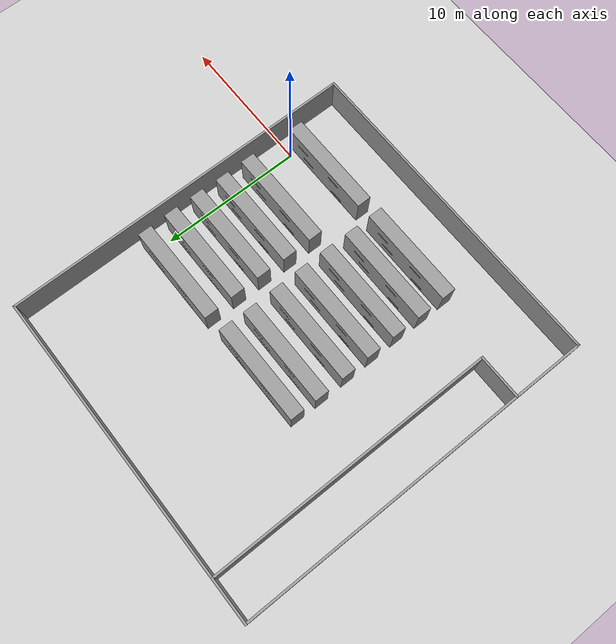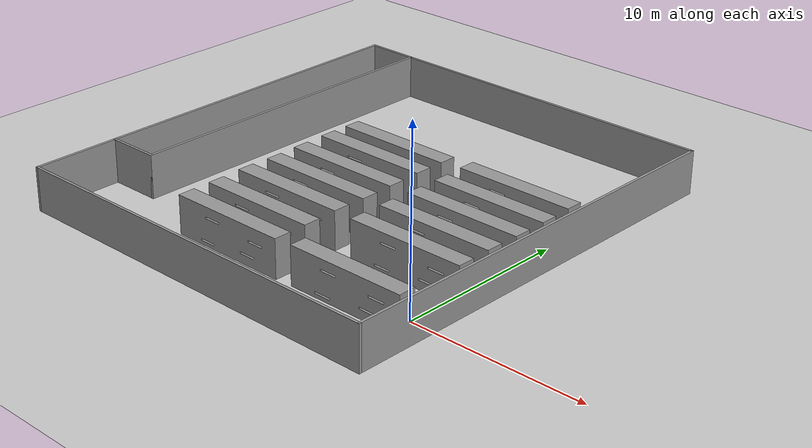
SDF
<sdf version="1.6">
 <world name="default">
  <light name="sun" type="directional">
   <pose>0 0 10 0 -0 0</pose>
   <diffuse>0.8 0.8 0.8 1</diffuse>
   <specular>0.2 0.2 0.2 1</specular>
   <attenuation>
    <range>1000</range>
    <constant>0.9</constant>
    <linear>0.01</linear>
    <quadratic>0.001</quadratic>
   </attenuation>
   <direction>-0.5 0.1 -0.9</direction>
  </light>
  <model name="ground_plane">
   <static>1</static>
   <link name="link">
    <collision name="collision">
     <geometry><plane><normal>0 0 1</normal><size>100 100</size></plane></geometry>
     <surface>
      <contact><collide_bitmask>65535</collide_bitmask></contact>
      <friction><ode><mu>100</mu><mu2>50</mu2></ode></friction>
     </surface>
    </collision>
    <visual name="visual">
     <cast_shadows>0</cast_shadows>
     <geometry><plane><normal>0 0 1</normal><size>100 100</size></plane></geometry>
     <material>
      <script><uri>file://media/materials/scripts/gazebo.material</uri><name>Gazebo/Grey</name></script>
     </material>
    </visual>
   </link>
  </model>
  <gravity>0 0 -9.8</gravity>
  <magnetic_field>6e-06 2.3e-05 -4.2e-05</magnetic_field>
  <atmosphere type="adiabatic"/>
  <physics name="default_physics" default="0" type="ode">
   <max_step_size>0.001</max_step_size>
   <real_time_factor>1</real_time_factor>
   <real_time_update_rate>1000</real_time_update_rate>
  </physics>
  <scene><ambient>0.4 0.4 0.4 1</ambient><background>0.7 0.7 0.7 1</background><shadows>1</shadows></scene>
  <audio><device>default</device></audio>
  <spherical_coordinates>
   <surface_model>EARTH_WGS84</surface_model>
   <latitude_deg>0</latitude_deg>
   <longitude_deg>0</longitude_deg>
   <elevation>0</elevation>
   <heading_deg>0</heading_deg>
  </spherical_coordinates>
  <model name="library_2">
   <link name="link_0">
    <inertial>
     <mass>1</mass>
     <inertia>
      <ixx>0.166667</ixx>
      <ixy>0</ixy>
      <ixz>0</ixz>
      <iyy>0.166667</iyy>
      <iyz>0</iyz>
      <izz>0.166667</izz>
     </inertia>
    </inertial>
    <pose>-3.69006 -6.33327 -0.003806 1.5686 -0 0</pose>
    <visual name="visual">
     <geometry>
      <mesh>
       <uri>/home/larryyan/catkin_ws/src/indoor_robot/models/library/models/book-shelf.obj</uri>
       <scale>1 1 1</scale>
      </mesh>
     </geometry>
     <material>
      <lighting>1</lighting>
      <script><uri>file://media/materials/scripts/gazebo.material</uri><name>Gazebo/Grey</name></script>
      <ambient>0 0 0 0</ambient>
      <diffuse>0 0 0 0</diffuse>
      <specular>0 0 0 0</specular>
      <emissive>0 0 0 0</emissive>
      <shader type="vertex"><normal_map>__default__</normal_map></shader>
     </material>
    </visual>
    <collision name="collision">
     <geometry>
      <mesh>
       <uri>/home/larryyan/catkin_ws/src/indoor_robot/models/library/models/book-shelf.obj</uri>
       <scale>1 1 1</scale>
      </mesh>
     </geometry>
     <surface>
      <friction>
       <ode><mu>1</mu><mu2>1</mu2><fdir1>0 0 0</fdir1><slip1>0</slip1><slip2>0</slip2></ode>
       <torsional>
        <coefficient>1</coefficient>
        <patch_radius>0</patch_radius>
        <surface_radius>0</surface_radius>
        <use_patch_radius>1</use_patch_radius>
        <ode><slip>0</slip></ode>
       </torsional>
      </friction>
      <bounce><restitution_coefficient>0</restitution_coefficient><threshold>1e+06</threshold></bounce>
      <contact>
       <collide_without_contact>0</collide_without_contact>
       <collide_without_contact_bitmask>1</collide_without_contact_bitmask>
       <collide_bitmask>1</collide_bitmask>
       <ode>
        <soft_cfm>0</soft_cfm>
        <soft_erp>0.2</soft_erp>
        <kp>1e+13</kp>
        <kd>1</kd>
        <max_vel>0.01</max_vel>
        <min_depth>0</min_depth>
       </ode>
       <bullet>
        <split_impulse>1</split_impulse>
        <split_impulse_penetration_threshold>-0.01</split_impulse_penetration_threshold>
        <soft_cfm>0</soft_cfm>
        <soft_erp>0.2</soft_erp>
        <kp>1e+13</kp>
        <kd>1</kd>
       </bullet>
      </contact>
     </surface>
    </collision>
   </link>
   <link name="link_0_clone">
    <inertial>
     <mass>1</mass>
     <inertia>
      <ixx>0.166667</ixx>
      <ixy>0</ixy>
      <ixz>0</ixz>
      <iyy>0.166667</iyy>
      <iyz>0</iyz>
      <izz>0.166667</izz>
     </inertia>
    </inertial>
    <pose>-3.71001 -4.35599 -0.003806 1.5686 -0 0</pose>
    <visual name="visual">
     <geometry>
      <mesh>
       <uri>/home/larryyan/catkin_ws/src/indoor_robot/models/library/models/book-shelf.obj</uri>
       <scale>1 1 1</scale>
      </mesh>
     </geometry>
     <material>
      <lighting>1</lighting>
      <script><uri>file://media/materials/scripts/gazebo.material</uri><name>Gazebo/Grey</name></script>
      <ambient>0 0 0 0</ambient>
      <diffuse>0 0 0 0</diffuse>
      <specular>0 0 0 0</specular>
      <emissive>0 0 0 0</emissive>
      <shader type="vertex"><normal_map>__default__</normal_map></shader>
     </material>
    </visual>
    <collision name="collision">
     <geometry>
      <mesh>
       <uri>/home/larryyan/catkin_ws/src/indoor_robot/models/library/models/book-shelf.obj</uri>
       <scale>1 1 1</scale>
      </mesh>
     </geometry>
     <surface>
      <friction>
       <ode><mu>1</mu><mu2>1</mu2><fdir1>0 0 0</fdir1><slip1>0</slip1><slip2>0</slip2></ode>
       <torsional>
        <coefficient>1</coefficient>
        <patch_radius>0</patch_radius>
        <surface_radius>0</surface_radius>
        <use_patch_radius>1</use_patch_radius>
        <ode><slip>0</slip></ode>
       </torsional>
      </friction>
      <bounce><restitution_coefficient>0</restitution_coefficient><threshold>1e+06</threshold></bounce>
      <contact>
       <collide_without_contact>0</collide_without_contact>
       <collide_without_contact_bitmask>1</collide_without_contact_bitmask>
       <collide_bitmask>1</collide_bitmask>
       <ode>
        <soft_cfm>0</soft_cfm>
        <soft_erp>0.2</soft_erp>
        <kp>1e+13</kp>
        <kd>1</kd>
        <max_vel>0.01</max_vel>
        <min_depth>0</min_depth>
       </ode>
       <bullet>
        <split_impulse>1</split_impulse>
        <split_impulse_penetration_threshold>-0.01</split_impulse_penetration_threshold>
        <soft_cfm>0</soft_cfm>
        <soft_erp>0.2</soft_erp>
        <kp>1e+13</kp>
        <kd>1</kd>
       </bullet>
      </contact>
     </surface>
    </collision>
   </link>
   <link name="link_0_clone_0">
    <inertial>
     <mass>1</mass>
     <inertia>
      <ixx>0.166667</ixx>
      <ixy>0</ixy>
      <ixz>0</ixz>
      <iyy>0.166667</iyy>
      <iyz>0</iyz>
      <izz>0.166667</izz>
     </inertia>
    </inertial>
    <pose>-3.69927 -2.33467 0.045672 1.5686 -0 0</pose>
    <visual name="visual">
     <geometry>
      <mesh>
       <uri>/home/larryyan/catkin_ws/src/indoor_robot/models/library/models/book-shelf.obj</uri>
       <scale>1 1 1</scale>
      </mesh>
     </geometry>
     <material>
      <lighting>1</lighting>
      <script><uri>file://media/materials/scripts/gazebo.material</uri><name>Gazebo/Grey</name></script>
      <ambient>0 0 0 0</ambient>
      <diffuse>0 0 0 0</diffuse>
      <specular>0 0 0 0</specular>
      <emissive>0 0 0 0</emissive>
      <shader type="vertex"><normal_map>__default__</normal_map></shader>
     </material>
    </visual>
    <collision name="collision">
     <geometry>
      <mesh>
       <uri>/home/larryyan/catkin_ws/src/indoor_robot/models/library/models/book-shelf.obj</uri>
       <scale>1 1 1</scale>
      </mesh>
     </geometry>
     <surface>
      <friction>
       <ode><mu>1</mu><mu2>1</mu2><fdir1>0 0 0</fdir1><slip1>0</slip1><slip2>0</slip2></ode>
       <torsional>
        <coefficient>1</coefficient>
        <patch_radius>0</patch_radius>
        <surface_radius>0</surface_radius>
        <use_patch_radius>1</use_patch_radius>
        <ode><slip>0</slip></ode>
       </torsional>
      </friction>
      <bounce><restitution_coefficient>0</restitution_coefficient><threshold>1e+06</threshold></bounce>
      <contact>
       <collide_without_contact>0</collide_without_contact>
       <collide_without_contact_bitmask>1</collide_without_contact_bitmask>
       <collide_bitmask>1</collide_bitmask>
       <ode>
        <soft_cfm>0</soft_cfm>
        <soft_erp>0.2</soft_erp>
        <kp>1e+13</kp>
        <kd>1</kd>
        <max_vel>0.01</max_vel>
        <min_depth>0</min_depth>
       </ode>
       <bullet>
        <split_impulse>1</split_impulse>
        <split_impulse_penetration_threshold>-0.01</split_impulse_penetration_threshold>
        <soft_cfm>0</soft_cfm>
        <soft_erp>0.2</soft_erp>
        <kp>1e+13</kp>
        <kd>1</kd>
       </bullet>
      </contact>
     </surface>
    </collision>
   </link>
   <link name="link_0_clone_1">
    <inertial>
     <mass>1</mass>
     <inertia>
      <ixx>0.166667</ixx>
      <ixy>0</ixy>
      <ixz>0</ixz>
      <iyy>0.166667</iyy>
      <iyz>0</iyz>
      <izz>0.166667</izz>
     </inertia>
    </inertial>
    <pose>-3.71256 -0.32633 -0.003806 1.5686 -0 0</pose>
    <visual name="visual">
     <geometry>
      <mesh>
       <uri>/home/larryyan/catkin_ws/src/indoor_robot/models/library/models/book-shelf.obj</uri>
       <scale>1 1 1</scale>
      </mesh>
     </geometry>
     <material>
      <lighting>1</lighting>
      <script><uri>file://media/materials/scripts/gazebo.material</uri><name>Gazebo/Grey</name></script>
      <ambient>0 0 0 0</ambient>
      <diffuse>0 0 0 0</diffuse>
      <specular>0 0 0 0</specular>
      <emissive>0 0 0 0</emissive>
      <shader type="vertex"><normal_map>__default__</normal_map></shader>
     </material>
    </visual>
    <collision name="collision">
     <geometry>
      <mesh>
       <uri>/home/larryyan/catkin_ws/src/indoor_robot/models/library/models/book-shelf.obj</uri>
       <scale>1 1 1</scale>
      </mesh>
     </geometry>
     <surface>
      <friction>
       <ode><mu>1</mu><mu2>1</mu2><fdir1>0 0 0</fdir1><slip1>0</slip1><slip2>0</slip2></ode>
       <torsional>
        <coefficient>1</coefficient>
        <patch_radius>0</patch_radius>
        <surface_radius>0</surface_radius>
        <use_patch_radius>1</use_patch_radius>
        <ode><slip>0</slip></ode>
       </torsional>
      </friction>
      <bounce><restitution_coefficient>0</restitution_coefficient><threshold>1e+06</threshold></bounce>
      <contact>
       <collide_without_contact>0</collide_without_contact>
       <collide_without_contact_bitmask>1</collide_without_contact_bitmask>
       <collide_bitmask>1</collide_bitmask>
       <ode>
        <soft_cfm>0</soft_cfm>
        <soft_erp>0.2</soft_erp>
        <kp>1e+13</kp>
        <kd>1</kd>
        <max_vel>0.01</max_vel>
        <min_depth>0</min_depth>
       </ode>
       <bullet>
        <split_impulse>1</split_impulse>
        <split_impulse_penetration_threshold>-0.01</split_impulse_penetration_threshold>
        <soft_cfm>0</soft_cfm>
        <soft_erp>0.2</soft_erp>
        <kp>1e+13</kp>
        <kd>1</kd>
       </bullet>
      </contact>
     </surface>
    </collision>
   </link>
   <link name="link_0_clone_11">
    <inertial>
     <mass>1</mass>
     <inertia>
      <ixx>0.166667</ixx>
      <ixy>0</ixy>
      <ixz>0</ixz>
      <iyy>0.166667</iyy>
      <iyz>0</iyz>
      <izz>0.166667</izz>
     </inertia>
    </inertial>
    <pose>4.27862 -6.25594 -0.003806 1.5686 -0 0</pose>
    <visual name="visual">
     <geometry>
      <mesh>
       <uri>/home/larryyan/catkin_ws/src/indoor_robot/models/library/models/book-shelf.obj</uri>
       <scale>1 1 1</scale>
      </mesh>
     </geometry>
     <material>
      <lighting>1</lighting>
      <script><uri>file://media/materials/scripts/gazebo.material</uri><name>Gazebo/Grey</name></script>
      <ambient>0 0 0 0</ambient>
      <diffuse>0 0 0 0</diffuse>
      <specular>0 0 0 0</specular>
      <emissive>0 0 0 0</emissive>
      <shader type="vertex"><normal_map>__default__</normal_map></shader>
     </material>
    </visual>
    <collision name="collision">
     <geometry>
      <mesh>
       <uri>/home/larryyan/catkin_ws/src/indoor_robot/models/library/models/book-shelf.obj</uri>
       <scale>1 1 1</scale>
      </mesh>
     </geometry>
     <surface>
      <friction>
       <ode><mu>1</mu><mu2>1</mu2><fdir1>0 0 0</fdir1><slip1>0</slip1><slip2>0</slip2></ode>
       <torsional>
        <coefficient>1</coefficient>
        <patch_radius>0</patch_radius>
        <surface_radius>0</surface_radius>
        <use_patch_radius>1</use_patch_radius>
        <ode><slip>0</slip></ode>
       </torsional>
      </friction>
      <bounce><restitution_coefficient>0</restitution_coefficient><threshold>1e+06</threshold></bounce>
      <contact>
       <collide_without_contact>0</collide_without_contact>
       <collide_without_contact_bitmask>1</collide_without_contact_bitmask>
       <collide_bitmask>1</collide_bitmask>
       <ode>
        <soft_cfm>0</soft_cfm>
        <soft_erp>0.2</soft_erp>
        <kp>1e+13</kp>
        <kd>1</kd>
        <max_vel>0.01</max_vel>
        <min_depth>0</min_depth>
       </ode>
       <bullet>
        <split_impulse>1</split_impulse>
        <split_impulse_penetration_threshold>-0.01</split_impulse_penetration_threshold>
        <soft_cfm>0</soft_cfm>
        <soft_erp>0.2</soft_erp>
        <kp>1e+13</kp>
        <kd>1</kd>
       </bullet>
      </contact>
     </surface>
    </collision>
   </link>
   <link name="link_0_clone_2">
    <inertial>
     <mass>1</mass>
     <inertia>
      <ixx>0.166667</ixx>
      <ixy>0</ixy>
      <ixz>0</ixz>
      <iyy>0.166667</iyy>
      <iyz>0</iyz>
      <izz>0.166667</izz>
     </inertia>
    </inertial>
    <pose>-3.75559 1.66628 -0.003806 1.5686 -0 0</pose>
    <visual name="visual">
     <geometry>
      <mesh>
       <uri>/home/larryyan/catkin_ws/src/indoor_robot/models/library/models/book-shelf.obj</uri>
       <scale>1 1 1</scale>
      </mesh>
     </geometry>
     <material>
      <lighting>1</lighting>
      <script><uri>file://media/materials/scripts/gazebo.material</uri><name>Gazebo/Grey</name></script>
      <ambient>0 0 0 0</ambient>
      <diffuse>0 0 0 0</diffuse>
      <specular>0 0 0 0</specular>
      <emissive>0 0 0 0</emissive>
      <shader type="vertex"><normal_map>__default__</normal_map></shader>
     </material>
    </visual>
    <collision name="collision">
     <geometry>
      <mesh>
       <uri>/home/larryyan/catkin_ws/src/indoor_robot/models/library/models/book-shelf.obj</uri>
       <scale>1 1 1</scale>
      </mesh>
     </geometry>
     <surface>
      <friction>
       <ode><mu>1</mu><mu2>1</mu2><fdir1>0 0 0</fdir1><slip1>0</slip1><slip2>0</slip2></ode>
       <torsional>
        <coefficient>1</coefficient>
        <patch_radius>0</patch_radius>
        <surface_radius>0</surface_radius>
        <use_patch_radius>1</use_patch_radius>
        <ode><slip>0</slip></ode>
       </torsional>
      </friction>
      <bounce><restitution_coefficient>0</restitution_coefficient><threshold>1e+06</threshold></bounce>
      <contact>
       <collide_without_contact>0</collide_without_contact>
       <collide_without_contact_bitmask>1</collide_without_contact_bitmask>
       <collide_bitmask>1</collide_bitmask>
       <ode>
        <soft_cfm>0</soft_cfm>
        <soft_erp>0.2</soft_erp>
        <kp>1e+13</kp>
        <kd>1</kd>
        <max_vel>0.01</max_vel>
        <min_depth>0</min_depth>
       </ode>
       <bullet>
        <split_impulse>1</split_impulse>
        <split_impulse_penetration_threshold>-0.01</split_impulse_penetration_threshold>
        <soft_cfm>0</soft_cfm>
        <soft_erp>0.2</soft_erp>
        <kp>1e+13</kp>
        <kd>1</kd>
       </bullet>
      </contact>
     </surface>
    </collision>
   </link>
   <link name="link_0_clone_3">
    <inertial>
     <mass>1</mass>
     <inertia>
      <ixx>0.166667</ixx>
      <ixy>0</ixy>
      <ixz>0</ixz>
      <iyy>0.166667</iyy>
      <iyz>0</iyz>
      <izz>0.166667</izz>
     </inertia>
    </inertial>
    <pose>-3.79987 3.74751 -0.003806 1.5686 -0 0</pose>
    <visual name="visual">
     <geometry>
      <mesh>
       <uri>/home/larryyan/catkin_ws/src/indoor_robot/models/library/models/book-shelf.obj</uri>
       <scale>1 1 1</scale>
      </mesh>
     </geometry>
     <material>
      <lighting>1</lighting>
      <script><uri>file://media/materials/scripts/gazebo.material</uri><name>Gazebo/Grey</name></script>
      <ambient>0 0 0 0</ambient>
      <diffuse>0 0 0 0</diffuse>
      <specular>0 0 0 0</specular>
      <emissive>0 0 0 0</emissive>
      <shader type="vertex"><normal_map>__default__</normal_map></shader>
     </material>
    </visual>
    <collision name="collision">
     <geometry>
      <mesh>
       <uri>/home/larryyan/catkin_ws/src/indoor_robot/models/library/models/book-shelf.obj</uri>
       <scale>1 1 1</scale>
      </mesh>
     </geometry>
     <surface>
      <friction>
       <ode><mu>1</mu><mu2>1</mu2><fdir1>0 0 0</fdir1><slip1>0</slip1><slip2>0</slip2></ode>
       <torsional>
        <coefficient>1</coefficient>
        <patch_radius>0</patch_radius>
        <surface_radius>0</surface_radius>
        <use_patch_radius>1</use_patch_radius>
        <ode><slip>0</slip></ode>
       </torsional>
      </friction>
      <bounce><restitution_coefficient>0</restitution_coefficient><threshold>1e+06</threshold></bounce>
      <contact>
       <collide_without_contact>0</collide_without_contact>
       <collide_without_contact_bitmask>1</collide_without_contact_bitmask>
       <collide_bitmask>1</collide_bitmask>
       <ode>
        <soft_cfm>0</soft_cfm>
        <soft_erp>0.2</soft_erp>
        <kp>1e+13</kp>
        <kd>1</kd>
        <max_vel>0.01</max_vel>
        <min_depth>0</min_depth>
       </ode>
       <bullet>
        <split_impulse>1</split_impulse>
        <split_impulse_penetration_threshold>-0.01</split_impulse_penetration_threshold>
        <soft_cfm>0</soft_cfm>
        <soft_erp>0.2</soft_erp>
        <kp>1e+13</kp>
        <kd>1</kd>
       </bullet>
      </contact>
     </surface>
    </collision>
   </link>
   <link name="link_0_clone_4">
    <inertial>
     <mass>1</mass>
     <inertia>
      <ixx>0.166667</ixx>
      <ixy>0</ixy>
      <ixz>0</ixz>
      <iyy>0.166667</iyy>
      <iyz>0</iyz>
      <izz>0.166667</izz>
     </inertia>
    </inertial>
    <pose>-3.77388 5.5794 -0.003806 1.5686 -0 0</pose>
    <visual name="visual">
     <geometry>
      <mesh>
       <uri>/home/larryyan/catkin_ws/src/indoor_robot/models/library/models/book-shelf.obj</uri>
       <scale>1 1 1</scale>
      </mesh>
     </geometry>
     <material>
      <lighting>1</lighting>
      <script><uri>file://media/materials/scripts/gazebo.material</uri><name>Gazebo/Grey</name></script>
      <ambient>0 0 0 0</ambient>
      <diffuse>0 0 0 0</diffuse>
      <specular>0 0 0 0</specular>
      <emissive>0 0 0 0</emissive>
      <shader type="vertex"><normal_map>__default__</normal_map></shader>
     </material>
    </visual>
    <collision name="collision">
     <geometry>
      <mesh>
       <uri>/home/larryyan/catkin_ws/src/indoor_robot/models/library/models/book-shelf.obj</uri>
       <scale>1 1 1</scale>
      </mesh>
     </geometry>
     <surface>
      <friction>
       <ode><mu>1</mu><mu2>1</mu2><fdir1>0 0 0</fdir1><slip1>0</slip1><slip2>0</slip2></ode>
       <torsional>
        <coefficient>1</coefficient>
        <patch_radius>0</patch_radius>
        <surface_radius>0</surface_radius>
        <use_patch_radius>1</use_patch_radius>
        <ode><slip>0</slip></ode>
       </torsional>
      </friction>
      <bounce><restitution_coefficient>0</restitution_coefficient><threshold>1e+06</threshold></bounce>
      <contact>
       <collide_without_contact>0</collide_without_contact>
       <collide_without_contact_bitmask>1</collide_without_contact_bitmask>
       <collide_bitmask>1</collide_bitmask>
       <ode>
        <soft_cfm>0</soft_cfm>
        <soft_erp>0.2</soft_erp>
        <kp>1e+13</kp>
        <kd>1</kd>
        <max_vel>0.01</max_vel>
        <min_depth>0</min_depth>
       </ode>
       <bullet>
        <split_impulse>1</split_impulse>
        <split_impulse_penetration_threshold>-0.01</split_impulse_penetration_threshold>
        <soft_cfm>0</soft_cfm>
        <soft_erp>0.2</soft_erp>
        <kp>1e+13</kp>
        <kd>1</kd>
       </bullet>
      </contact>
     </surface>
    </collision>
   </link>
   <link name="link_0_clone_5">
    <inertial>
     <mass>1</mass>
     <inertia>
      <ixx>0.166667</ixx>
      <ixy>0</ixy>
      <ixz>0</ixz>
      <iyy>0.166667</iyy>
      <iyz>0</iyz>
      <izz>0.166667</izz>
     </inertia>
    </inertial>
    <pose>4.34047 5.78579 -0.003806 1.5686 -0 0</pose>
    <visual name="visual">
     <geometry>
      <mesh>
       <uri>/home/larryyan/catkin_ws/src/indoor_robot/models/library/models/book-shelf.obj</uri>
       <scale>1 1 1</scale>
      </mesh>
     </geometry>
     <material>
      <lighting>1</lighting>
      <script><uri>file://media/materials/scripts/gazebo.material</uri><name>Gazebo/Grey</name></script>
      <ambient>0 0 0 0</ambient>
      <diffuse>0 0 0 0</diffuse>
      <specular>0 0 0 0</specular>
      <emissive>0 0 0 0</emissive>
      <shader type="vertex"><normal_map>__default__</normal_map></shader>
     </material>
    </visual>
    <collision name="collision">
     <geometry>
      <mesh>
       <uri>/home/larryyan/catkin_ws/src/indoor_robot/models/library/models/book-shelf.obj</uri>
       <scale>1 1 1</scale>
      </mesh>
     </geometry>
     <surface>
      <friction>
       <ode><mu>1</mu><mu2>1</mu2><fdir1>0 0 0</fdir1><slip1>0</slip1><slip2>0</slip2></ode>
       <torsional>
        <coefficient>1</coefficient>
        <patch_radius>0</patch_radius>
        <surface_radius>0</surface_radius>
        <use_patch_radius>1</use_patch_radius>
        <ode><slip>0</slip></ode>
       </torsional>
      </friction>
      <bounce><restitution_coefficient>0</restitution_coefficient><threshold>1e+06</threshold></bounce>
      <contact>
       <collide_without_contact>0</collide_without_contact>
       <collide_without_contact_bitmask>1</collide_without_contact_bitmask>
       <collide_bitmask>1</collide_bitmask>
       <ode>
        <soft_cfm>0</soft_cfm>
        <soft_erp>0.2</soft_erp>
        <kp>1e+13</kp>
        <kd>1</kd>
        <max_vel>0.01</max_vel>
        <min_depth>0</min_depth>
       </ode>
       <bullet>
        <split_impulse>1</split_impulse>
        <split_impulse_penetration_threshold>-0.01</split_impulse_penetration_threshold>
        <soft_cfm>0</soft_cfm>
        <soft_erp>0.2</soft_erp>
        <kp>1e+13</kp>
        <kd>1</kd>
       </bullet>
      </contact>
     </surface>
    </collision>
   </link>
   <link name="link_0_clone_6">
    <inertial>
     <mass>1</mass>
     <inertia>
      <ixx>0.166667</ixx>
      <ixy>0</ixy>
      <ixz>0</ixz>
      <iyy>0.166667</iyy>
      <iyz>0</iyz>
      <izz>0.166667</izz>
     </inertia>
    </inertial>
    <pose>4.39332 3.74325 -0.003806 1.5686 -0 0</pose>
    <visual name="visual">
     <geometry>
      <mesh>
       <uri>/home/larryyan/catkin_ws/src/indoor_robot/models/library/models/book-shelf.obj</uri>
       <scale>1 1 1</scale>
      </mesh>
     </geometry>
     <material>
      <lighting>1</lighting>
      <script><uri>file://media/materials/scripts/gazebo.material</uri><name>Gazebo/Grey</name></script>
      <ambient>0 0 0 0</ambient>
      <diffuse>0 0 0 0</diffuse>
      <specular>0 0 0 0</specular>
      <emissive>0 0 0 0</emissive>
      <shader type="vertex"><normal_map>__default__</normal_map></shader>
     </material>
    </visual>
    <collision name="collision">
     <geometry>
      <mesh>
       <uri>/home/larryyan/catkin_ws/src/indoor_robot/models/library/models/book-shelf.obj</uri>
       <scale>1 1 1</scale>
      </mesh>
     </geometry>
     <surface>
      <friction>
       <ode><mu>1</mu><mu2>1</mu2><fdir1>0 0 0</fdir1><slip1>0</slip1><slip2>0</slip2></ode>
       <torsional>
        <coefficient>1</coefficient>
        <patch_radius>0</patch_radius>
        <surface_radius>0</surface_radius>
        <use_patch_radius>1</use_patch_radius>
        <ode><slip>0</slip></ode>
       </torsional>
      </friction>
      <bounce><restitution_coefficient>0</restitution_coefficient><threshold>1e+06</threshold></bounce>
      <contact>
       <collide_without_contact>0</collide_without_contact>
       <collide_without_contact_bitmask>1</collide_without_contact_bitmask>
       <collide_bitmask>1</collide_bitmask>
       <ode>
        <soft_cfm>0</soft_cfm>
        <soft_erp>0.2</soft_erp>
        <kp>1e+13</kp>
        <kd>1</kd>
        <max_vel>0.01</max_vel>
        <min_depth>0</min_depth>
       </ode>
       <bullet>
        <split_impulse>1</split_impulse>
        <split_impulse_penetration_threshold>-0.01</split_impulse_penetration_threshold>
        <soft_cfm>0</soft_cfm>
        <soft_erp>0.2</soft_erp>
        <kp>1e+13</kp>
        <kd>1</kd>
       </bullet>
      </contact>
     </surface>
    </collision>
   </link>
   <link name="link_0_clone_7">
    <inertial>
     <mass>1</mass>
     <inertia>
      <ixx>0.166667</ixx>
      <ixy>0</ixy>
      <ixz>0</ixz>
      <iyy>0.166667</iyy>
      <iyz>0</iyz>
      <izz>0.166667</izz>
     </inertia>
    </inertial>
    <pose>4.39733 1.72192 -0.003806 1.5686 -0 0</pose>
    <visual name="visual">
     <geometry>
      <mesh>
       <uri>/home/larryyan/catkin_ws/src/indoor_robot/models/library/models/book-shelf.obj</uri>
       <scale>1 1 1</scale>
      </mesh>
     </geometry>
     <material>
      <lighting>1</lighting>
      <script><uri>file://media/materials/scripts/gazebo.material</uri><name>Gazebo/Grey</name></script>
      <ambient>0 0 0 0</ambient>
      <diffuse>0 0 0 0</diffuse>
      <specular>0 0 0 0</specular>
      <emissive>0 0 0 0</emissive>
      <shader type="vertex"><normal_map>__default__</normal_map></shader>
     </material>
    </visual>
    <collision name="collision">
     <geometry>
      <mesh>
       <uri>/home/larryyan/catkin_ws/src/indoor_robot/models/library/models/book-shelf.obj</uri>
       <scale>1 1 1</scale>
      </mesh>
     </geometry>
     <surface>
      <friction>
       <ode><mu>1</mu><mu2>1</mu2><fdir1>0 0 0</fdir1><slip1>0</slip1><slip2>0</slip2></ode>
       <torsional>
        <coefficient>1</coefficient>
        <patch_radius>0</patch_radius>
        <surface_radius>0</surface_radius>
        <use_patch_radius>1</use_patch_radius>
        <ode><slip>0</slip></ode>
       </torsional>
      </friction>
      <bounce><restitution_coefficient>0</restitution_coefficient><threshold>1e+06</threshold></bounce>
      <contact>
       <collide_without_contact>0</collide_without_contact>
       <collide_without_contact_bitmask>1</collide_without_contact_bitmask>
       <collide_bitmask>1</collide_bitmask>
       <ode>
        <soft_cfm>0</soft_cfm>
        <soft_erp>0.2</soft_erp>
        <kp>1e+13</kp>
        <kd>1</kd>
        <max_vel>0.01</max_vel>
        <min_depth>0</min_depth>
       </ode>
       <bullet>
        <split_impulse>1</split_impulse>
        <split_impulse_penetration_threshold>-0.01</split_impulse_penetration_threshold>
        <soft_cfm>0</soft_cfm>
        <soft_erp>0.2</soft_erp>
        <kp>1e+13</kp>
        <kd>1</kd>
       </bullet>
      </contact>
     </surface>
    </collision>
   </link>
   <link name="link_0_clone_8">
    <inertial>
     <mass>1</mass>
     <inertia>
      <ixx>0.166667</ixx>
      <ixy>0</ixy>
      <ixz>0</ixz>
      <iyy>0.166667</iyy>
      <iyz>0</iyz>
      <izz>0.166667</izz>
     </inertia>
    </inertial>
    <pose>4.34963 -0.285763 -0.003806 1.5686 -0 0</pose>
    <visual name="visual">
     <geometry>
      <mesh>
       <uri>/home/larryyan/catkin_ws/src/indoor_robot/models/library/models/book-shelf.obj</uri>
       <scale>1 1 1</scale>
      </mesh>
     </geometry>
     <material>
      <lighting>1</lighting>
      <script><uri>file://media/materials/scripts/gazebo.material</uri><name>Gazebo/Grey</name></script>
      <ambient>0 0 0 0</ambient>
      <diffuse>0 0 0 0</diffuse>
      <specular>0 0 0 0</specular>
      <emissive>0 0 0 0</emissive>
      <shader type="vertex"><normal_map>__default__</normal_map></shader>
     </material>
    </visual>
    <collision name="collision">
     <geometry>
      <mesh>
       <uri>/home/larryyan/catkin_ws/src/indoor_robot/models/library/models/book-shelf.obj</uri>
       <scale>1 1 1</scale>
      </mesh>
     </geometry>
     <surface>
      <friction>
       <ode><mu>1</mu><mu2>1</mu2><fdir1>0 0 0</fdir1><slip1>0</slip1><slip2>0</slip2></ode>
       <torsional>
        <coefficient>1</coefficient>
        <patch_radius>0</patch_radius>
        <surface_radius>0</surface_radius>
        <use_patch_radius>1</use_patch_radius>
        <ode><slip>0</slip></ode>
       </torsional>
      </friction>
      <bounce><restitution_coefficient>0</restitution_coefficient><threshold>1e+06</threshold></bounce>
      <contact>
       <collide_without_contact>0</collide_without_contact>
       <collide_without_contact_bitmask>1</collide_without_contact_bitmask>
       <collide_bitmask>1</collide_bitmask>
       <ode>
        <soft_cfm>0</soft_cfm>
        <soft_erp>0.2</soft_erp>
        <kp>1e+13</kp>
        <kd>1</kd>
        <max_vel>0.01</max_vel>
        <min_depth>0</min_depth>
       </ode>
       <bullet>
        <split_impulse>1</split_impulse>
        <split_impulse_penetration_threshold>-0.01</split_impulse_penetration_threshold>
        <soft_cfm>0</soft_cfm>
        <soft_erp>0.2</soft_erp>
        <kp>1e+13</kp>
        <kd>1</kd>
       </bullet>
      </contact>
     </surface>
    </collision>
   </link>
   <link name="link_0_clone_9">
    <inertial>
     <mass>1</mass>
     <inertia>
      <ixx>0.166667</ixx>
      <ixy>0</ixy>
      <ixz>0</ixz>
      <iyy>0.166667</iyy>
      <iyz>0</iyz>
      <izz>0.166667</izz>
     </inertia>
    </inertial>
    <pose>4.38185 -2.35219 -0.003806 1.5686 -0 0</pose>
    <visual name="visual">
     <geometry>
      <mesh>
       <uri>/home/larryyan/catkin_ws/src/indoor_robot/models/library/models/book-shelf.obj</uri>
       <scale>1 1 1</scale>
      </mesh>
     </geometry>
     <material>
      <lighting>1</lighting>
      <script><uri>file://media/materials/scripts/gazebo.material</uri><name>Gazebo/Grey</name></script>
      <ambient>0 0 0 0</ambient>
      <diffuse>0 0 0 0</diffuse>
      <specular>0 0 0 0</specular>
      <emissive>0 0 0 0</emissive>
      <shader type="vertex"><normal_map>__default__</normal_map></shader>
     </material>
    </visual>
    <collision name="collision">
     <geometry>
      <mesh>
       <uri>/home/larryyan/catkin_ws/src/indoor_robot/models/library/models/book-shelf.obj</uri>
       <scale>1 1 1</scale>
      </mesh>
     </geometry>
     <surface>
      <friction>
       <ode><mu>1</mu><mu2>1</mu2><fdir1>0 0 0</fdir1><slip1>0</slip1><slip2>0</slip2></ode>
       <torsional>
        <coefficient>1</coefficient>
        <patch_radius>0</patch_radius>
        <surface_radius>0</surface_radius>
        <use_patch_radius>1</use_patch_radius>
        <ode><slip>0</slip></ode>
       </torsional>
      </friction>
      <bounce><restitution_coefficient>0</restitution_coefficient><threshold>1e+06</threshold></bounce>
      <contact>
       <collide_without_contact>0</collide_without_contact>
       <collide_without_contact_bitmask>1</collide_without_contact_bitmask>
       <collide_bitmask>1</collide_bitmask>
       <ode>
        <soft_cfm>0</soft_cfm>
        <soft_erp>0.2</soft_erp>
        <kp>1e+13</kp>
        <kd>1</kd>
        <max_vel>0.01</max_vel>
        <min_depth>0</min_depth>
       </ode>
       <bullet>
        <split_impulse>1</split_impulse>
        <split_impulse_penetration_threshold>-0.01</split_impulse_penetration_threshold>
        <soft_cfm>0</soft_cfm>
        <soft_erp>0.2</soft_erp>
        <kp>1e+13</kp>
        <kd>1</kd>
       </bullet>
      </contact>
     </surface>
    </collision>
   </link>
   <static>0</static>
   <pose>-7.14413 5.33673 0.017716 0.002196 -0 0</pose>
  </model>
  <model name="library">
   <pose>-10.0938 7.72659 0 0 -0 0</pose>
   <link name="Wall_10">
    <collision name="Wall_10_Collision">
     <geometry><box><size>20.15 0.15 2.5</size></box></geometry>
     <pose>0 0 1.25 0 -0 0</pose>
    </collision>
    <visual name="Wall_10_Visual">
     <pose>0 0 1.25 0 -0 0</pose>
     <geometry><box><size>20.15 0.15 2.5</size></box></geometry>
     <material>
      <script><uri>file://media/materials/scripts/gazebo.material</uri><name>Gazebo/Grey</name></script>
      <ambient>1 1 1 1</ambient>
     </material>
     <meta><layer>0</layer></meta>
    </visual>
    <pose>-8.5 2.5 0 0 -0 1.5708</pose>
   </link>
   <link name="Wall_2">
    <collision name="Wall_2_Collision">
     <geometry><box><size>25.15 0.15 2.5</size></box></geometry>
     <pose>0 0 1.25 0 -0 0</pose>
    </collision>
    <visual name="Wall_2_Visual">
     <pose>0 0 1.25 0 -0 0</pose>
     <geometry><box><size>25.15 0.15 2.5</size></box></geometry>
     <material>
      <script><uri>file://media/materials/scripts/gazebo.material</uri><name>Gazebo/Grey</name></script>
      <ambient>1 1 1 1</ambient>
     </material>
     <meta><layer>0</layer></meta>
    </visual>
    <pose>-11.5 0 0 0 -0 1.5708</pose>
   </link>
   <link name="Wall_3">
    <collision name="Wall_3_Collision">
     <geometry><box><size>23.15 0.15 2.5</size></box></geometry>
     <pose>0 0 1.25 0 -0 0</pose>
    </collision>
    <visual name="Wall_3_Visual">
     <pose>0 0 1.25 0 -0 0</pose>
     <geometry><box><size>23.15 0.15 2.5</size></box></geometry>
     <material>
      <script><uri>file://media/materials/scripts/gazebo.material</uri><name>Gazebo/Grey</name></script>
      <ambient>1 1 1 1</ambient>
     </material>
     <meta><layer>0</layer></meta>
    </visual>
    <pose>0 12.5 0 0 -0 0</pose>
   </link>
   <link name="Wall_4">
    <collision name="Wall_4_Collision">
     <geometry><box><size>25.15 0.15 2.5</size></box></geometry>
     <pose>0 0 1.25 0 -0 0</pose>
    </collision>
    <visual name="Wall_4_Visual">
     <pose>0 0 1.25 0 -0 0</pose>
     <geometry><box><size>25.15 0.15 2.5</size></box></geometry>
     <material>
      <script><uri>file://media/materials/scripts/gazebo.material</uri><name>Gazebo/Grey</name></script>
      <ambient>1 1 1 1</ambient>
     </material>
     <meta><layer>0</layer></meta>
    </visual>
    <pose>11.5 0 0 0 -0 -1.5708</pose>
   </link>
   <link name="Wall_5">
    <collision name="Wall_5_Collision">
     <geometry><box><size>23.15 0.15 2.5</size></box></geometry>
     <pose>0 0 1.25 0 -0 0</pose>
    </collision>
    <visual name="Wall_5_Visual">
     <pose>0 0 1.25 0 -0 0</pose>
     <geometry><box><size>23.15 0.15 2.5</size></box></geometry>
     <material>
      <script><uri>file://media/materials/scripts/gazebo.material</uri><name>Gazebo/Grey</name></script>
      <ambient>1 1 1 1</ambient>
     </material>
     <meta><layer>0</layer></meta>
    </visual>
    <pose>0 -12.5 0 0 -0 3.14159</pose>
   </link>
   <link name="Wall_9">
    <collision name="Wall_9_Collision">
     <geometry><box><size>3.15 0.15 2.5</size></box></geometry>
     <pose>0 0 1.25 0 -0 0</pose>
    </collision>
    <visual name="Wall_9_Visual">
     <pose>0 0 1.25 0 -0 0</pose>
     <geometry><box><size>3.15 0.15 2.5</size></box></geometry>
     <material>
      <script><uri>file://media/materials/scripts/gazebo.material</uri><name>Gazebo/Grey</name></script>
      <ambient>1 1 1 1</ambient>
     </material>
     <meta><layer>0</layer></meta>
    </visual>
    <pose>-10 -7.5 0 0 -0 0</pose>
   </link>
   <static>1</static>
  </model>
 </world>
</sdf>
